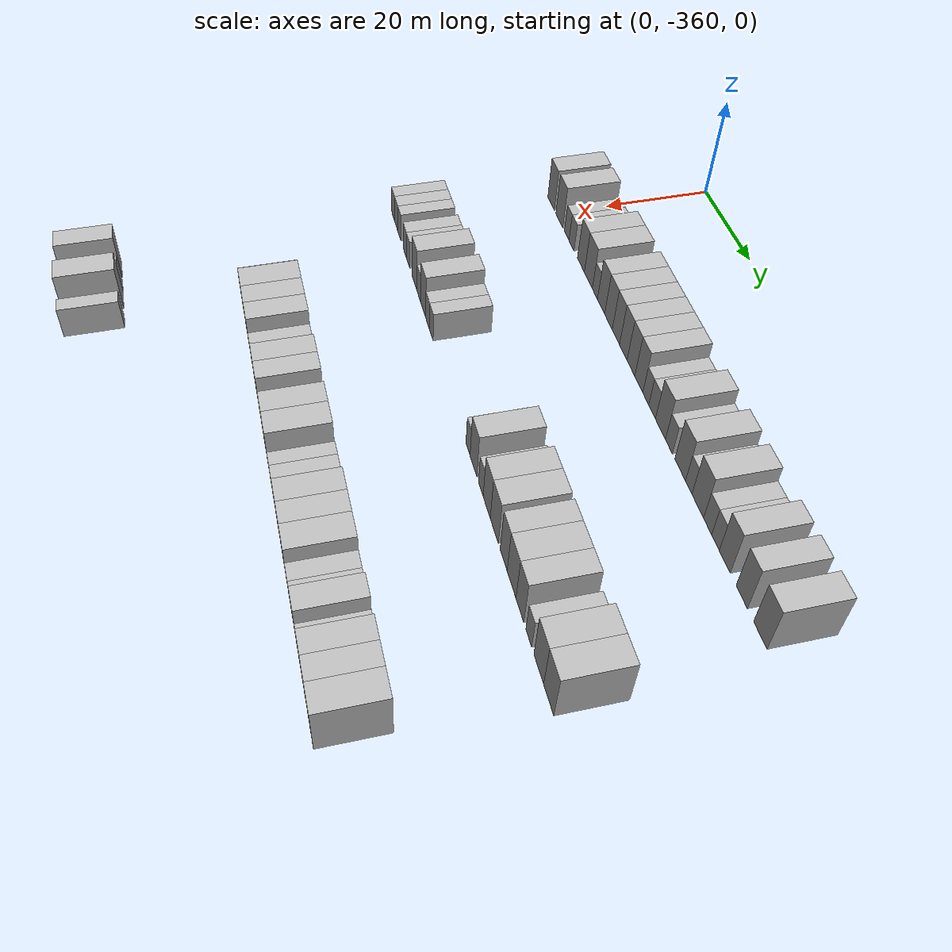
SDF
<sdf version="1.6">
 <world name="default">
  <model name="building_27">
   <static>1</static>
   <pose>25.0000 -363.0500 0 0.000000 0.000000 0.000000</pose>
   <link name="link">
    <pose>0 0 4.50 0 0 0</pose>
    <collision name="collision"><geometry><box><size>10.0000 4.1300 9.0000</size></box></geometry></collision>
    <visual name="visual">
     <cast_shadows>0</cast_shadows>
     <geometry><box><size>10.0000 4.1300 9.0000</size></box></geometry>
     <material>
      <script>
       <uri>model://HANNAS_wall/materials/scripts</uri>
       <uri>model://HANNAS_wall/materials/textures</uri>
       <name>vrc/HANNAS_wall</name>
      </script>
     </material>
    </visual>
   </link>
  </model>
  <model name="building_28">
   <static>1</static>
   <pose>25.0000 -357.8621 0 0.000000 0.000000 0.000000</pose>
   <link name="link">
    <pose>0 0 4.50 0 0 0</pose>
    <collision name="collision"><geometry><box><size>10.0000 4.2459 9.0000</size></box></geometry></collision>
    <visual name="visual">
     <cast_shadows>0</cast_shadows>
     <geometry><box><size>10.0000 4.2459 9.0000</size></box></geometry>
     <material>
      <script>
       <uri>model://HANNAS_wall/materials/scripts</uri>
       <uri>model://HANNAS_wall/materials/textures</uri>
       <name>vrc/HANNAS_wall</name>
      </script>
     </material>
    </visual>
   </link>
  </model>
  <model name="building_29">
   <static>1</static>
   <pose>25.0000 -353.3727 0 0.000000 0.000000 0.000000</pose>
   <link name="link">
    <pose>0 0 3.00 0 0 0</pose>
    <collision name="collision"><geometry><box><size>10.0000 2.7329 6.0000</size></box></geometry></collision>
    <visual name="visual">
     <cast_shadows>0</cast_shadows>
     <geometry><box><size>10.0000 2.7329 6.0000</size></box></geometry>
     <material>
      <script>
       <uri>model://HANNAS_wall/materials/scripts</uri>
       <uri>model://HANNAS_wall/materials/textures</uri>
       <name>vrc/HANNAS_wall</name>
      </script>
     </material>
    </visual>
   </link>
  </model>
  <model name="building_30">
   <static>1</static>
   <pose>25.0000 -350.5261 0 0.000000 0.000000 0.000000</pose>
   <link name="link">
    <pose>0 0 3.00 0 0 0</pose>
    <collision name="collision"><geometry><box><size>10.0000 2.9603 6.0000</size></box></geometry></collision>
    <visual name="visual">
     <cast_shadows>0</cast_shadows>
     <geometry><box><size>10.0000 2.9603 6.0000</size></box></geometry>
     <material>
      <script>
       <uri>model://HANNAS_wall/materials/scripts</uri>
       <uri>model://HANNAS_wall/materials/textures</uri>
       <name>vrc/HANNAS_wall</name>
      </script>
     </material>
    </visual>
   </link>
  </model>
  <model name="building_31">
   <static>1</static>
   <pose>25.0000 -345.0916 0 0.000000 0.000000 0.000000</pose>
   <link name="link">
    <pose>0 0 4.50 0 0 0</pose>
    <collision name="collision"><geometry><box><size>10.0000 3.9087 9.0000</size></box></geometry></collision>
    <visual name="visual">
     <cast_shadows>0</cast_shadows>
     <geometry><box><size>10.0000 3.9087 9.0000</size></box></geometry>
     <material>
      <script>
       <uri>model://HANNAS_wall/materials/scripts</uri>
       <uri>model://HANNAS_wall/materials/textures</uri>
       <name>vrc/HANNAS_wall</name>
      </script>
     </material>
    </visual>
   </link>
  </model>
  <model name="building_32">
   <static>1</static>
   <pose>25.0000 -340.9366 0 0.000000 0.000000 0.000000</pose>
   <link name="link">
    <pose>0 0 4.50 0 0 0</pose>
    <collision name="collision"><geometry><box><size>10.0000 4.4014 9.0000</size></box></geometry></collision>
    <visual name="visual">
     <cast_shadows>0</cast_shadows>
     <geometry><box><size>10.0000 4.4014 9.0000</size></box></geometry>
     <material>
      <script>
       <uri>model://HANNAS_wall/materials/scripts</uri>
       <uri>model://HANNAS_wall/materials/textures</uri>
       <name>vrc/HANNAS_wall</name>
      </script>
     </material>
    </visual>
   </link>
  </model>
  <model name="building_33">
   <static>1</static>
   <pose>25.0000 -337.3768 0 0.000000 0.000000 0.000000</pose>
   <link name="link">
    <pose>0 0 3.00 0 0 0</pose>
    <collision name="collision"><geometry><box><size>10.0000 2.7182 6.0000</size></box></geometry></collision>
    <visual name="visual">
     <cast_shadows>0</cast_shadows>
     <geometry><box><size>10.0000 2.7182 6.0000</size></box></geometry>
     <material>
      <script>
       <uri>model://HANNAS_wall/materials/scripts</uri>
       <uri>model://HANNAS_wall/materials/textures</uri>
       <name>vrc/HANNAS_wall</name>
      </script>
     </material>
    </visual>
   </link>
  </model>
  <model name="building_34">
   <static>1</static>
   <pose>25.0000 -334.1154 0 0.000000 0.000000 0.000000</pose>
   <link name="link">
    <pose>0 0 4.50 0 0 0</pose>
    <collision name="collision"><geometry><box><size>10.0000 3.8047 9.0000</size></box></geometry></collision>
    <visual name="visual">
     <cast_shadows>0</cast_shadows>
     <geometry><box><size>10.0000 3.8047 9.0000</size></box></geometry>
     <material>
      <script>
       <uri>model://HANNAS_wall/materials/scripts</uri>
       <uri>model://HANNAS_wall/materials/textures</uri>
       <name>vrc/HANNAS_wall</name>
      </script>
     </material>
    </visual>
   </link>
  </model>
  <model name="building_35">
   <static>1</static>
   <pose>25.0000 -330.2671 0 0.000000 0.000000 0.000000</pose>
   <link name="link">
    <pose>0 0 4.50 0 0 0</pose>
    <collision name="collision"><geometry><box><size>10.0000 3.8918 9.0000</size></box></geometry></collision>
    <visual name="visual">
     <cast_shadows>0</cast_shadows>
     <geometry><box><size>10.0000 3.8918 9.0000</size></box></geometry>
     <material>
      <script>
       <uri>model://HANNAS_wall/materials/scripts</uri>
       <uri>model://HANNAS_wall/materials/textures</uri>
       <name>vrc/HANNAS_wall</name>
      </script>
     </material>
    </visual>
   </link>
  </model>
  <model name="building_36">
   <static>1</static>
   <pose>25.0000 -326.5169 0 0.000000 0.000000 0.000000</pose>
   <link name="link">
    <pose>0 0 4.50 0 0 0</pose>
    <collision name="collision"><geometry><box><size>10.0000 3.6088 9.0000</size></box></geometry></collision>
    <visual name="visual">
     <cast_shadows>0</cast_shadows>
     <geometry><box><size>10.0000 3.6088 9.0000</size></box></geometry>
     <material>
      <script>
       <uri>model://HANNAS_wall/materials/scripts</uri>
       <uri>model://HANNAS_wall/materials/textures</uri>
       <name>vrc/HANNAS_wall</name>
      </script>
     </material>
    </visual>
   </link>
  </model>
  <model name="building_37">
   <static>1</static>
   <pose>25.0000 -322.8795 0 0.000000 0.000000 0.000000</pose>
   <link name="link">
    <pose>0 0 4.50 0 0 0</pose>
    <collision name="collision"><geometry><box><size>10.0000 3.6660 9.0000</size></box></geometry></collision>
    <visual name="visual">
     <cast_shadows>0</cast_shadows>
     <geometry><box><size>10.0000 3.6660 9.0000</size></box></geometry>
     <material>
      <script>
       <uri>model://HANNAS_wall/materials/scripts</uri>
       <uri>model://HANNAS_wall/materials/textures</uri>
       <name>vrc/HANNAS_wall</name>
      </script>
     </material>
    </visual>
   </link>
  </model>
  <model name="building_38">
   <static>1</static>
   <pose>25.0000 -319.2325 0 0.000000 0.000000 0.000000</pose>
   <link name="link">
    <pose>0 0 4.50 0 0 0</pose>
    <collision name="collision"><geometry><box><size>10.0000 3.6280 9.0000</size></box></geometry></collision>
    <visual name="visual">
     <cast_shadows>0</cast_shadows>
     <geometry><box><size>10.0000 3.6280 9.0000</size></box></geometry>
     <material>
      <script>
       <uri>model://HANNAS_wall/materials/scripts</uri>
       <uri>model://HANNAS_wall/materials/textures</uri>
       <name>vrc/HANNAS_wall</name>
      </script>
     </material>
    </visual>
   </link>
  </model>
  <model name="building_39">
   <static>1</static>
   <pose>25.0000 -315.5780 0 0.000000 0.000000 0.000000</pose>
   <link name="link">
    <pose>0 0 4.50 0 0 0</pose>
    <collision name="collision"><geometry><box><size>10.0000 3.6810 9.0000</size></box></geometry></collision>
    <visual name="visual">
     <cast_shadows>0</cast_shadows>
     <geometry><box><size>10.0000 3.6810 9.0000</size></box></geometry>
     <material>
      <script>
       <uri>model://HANNAS_wall/materials/scripts</uri>
       <uri>model://HANNAS_wall/materials/textures</uri>
       <name>vrc/HANNAS_wall</name>
      </script>
     </material>
    </visual>
   </link>
  </model>
  <model name="building_40">
   <static>1</static>
   <pose>25.0000 -312.4079 0 0.000000 0.000000 0.000000</pose>
   <link name="link">
    <pose>0 0 3.00 0 0 0</pose>
    <collision name="collision"><geometry><box><size>10.0000 2.6592 6.0000</size></box></geometry></collision>
    <visual name="visual">
     <cast_shadows>0</cast_shadows>
     <geometry><box><size>10.0000 2.6592 6.0000</size></box></geometry>
     <material>
      <script>
       <uri>model://HANNAS_wall/materials/scripts</uri>
       <uri>model://HANNAS_wall/materials/textures</uri>
       <name>vrc/HANNAS_wall</name>
      </script>
     </material>
    </visual>
   </link>
  </model>
  <model name="building_41">
   <static>1</static>
   <pose>25.0000 -309.6096 0 0.000000 0.000000 0.000000</pose>
   <link name="link">
    <pose>0 0 3.00 0 0 0</pose>
    <collision name="collision"><geometry><box><size>10.0000 2.9374 6.0000</size></box></geometry></collision>
    <visual name="visual">
     <cast_shadows>0</cast_shadows>
     <geometry><box><size>10.0000 2.9374 6.0000</size></box></geometry>
     <material>
      <script>
       <uri>model://HANNAS_wall/materials/scripts</uri>
       <uri>model://HANNAS_wall/materials/textures</uri>
       <name>vrc/HANNAS_wall</name>
      </script>
     </material>
    </visual>
   </link>
  </model>
  <model name="building_42">
   <static>1</static>
   <pose>25.0000 -306.0149 0 0.000000 0.000000 0.000000</pose>
   <link name="link">
    <pose>0 0 4.50 0 0 0</pose>
    <collision name="collision"><geometry><box><size>10.0000 4.2520 9.0000</size></box></geometry></collision>
    <visual name="visual">
     <cast_shadows>0</cast_shadows>
     <geometry><box><size>10.0000 4.2520 9.0000</size></box></geometry>
     <material>
      <script>
       <uri>model://HANNAS_wall/materials/scripts</uri>
       <uri>model://HANNAS_wall/materials/textures</uri>
       <name>vrc/HANNAS_wall</name>
      </script>
     </material>
    </visual>
   </link>
  </model>
  <model name="building_43">
   <static>1</static>
   <pose>25.0000 -302.4522 0 0.000000 0.000000 0.000000</pose>
   <link name="link">
    <pose>0 0 3.00 0 0 0</pose>
    <collision name="collision"><geometry><box><size>10.0000 2.8735 6.0000</size></box></geometry></collision>
    <visual name="visual">
     <cast_shadows>0</cast_shadows>
     <geometry><box><size>10.0000 2.8735 6.0000</size></box></geometry>
     <material>
      <script>
       <uri>model://HANNAS_wall/materials/scripts</uri>
       <uri>model://HANNAS_wall/materials/textures</uri>
       <name>vrc/HANNAS_wall</name>
      </script>
     </material>
    </visual>
   </link>
  </model>
  <model name="building_44">
   <static>1</static>
   <pose>25.0000 -297.8912 0 0.000000 0.000000 0.000000</pose>
   <link name="link">
    <pose>0 0 4.50 0 0 0</pose>
    <collision name="collision"><geometry><box><size>10.0000 4.2485 9.0000</size></box></geometry></collision>
    <visual name="visual">
     <cast_shadows>0</cast_shadows>
     <geometry><box><size>10.0000 4.2485 9.0000</size></box></geometry>
     <material>
      <script>
       <uri>model://HANNAS_wall/materials/scripts</uri>
       <uri>model://HANNAS_wall/materials/textures</uri>
       <name>vrc/HANNAS_wall</name>
      </script>
     </material>
    </visual>
   </link>
  </model>
  <model name="building_45">
   <static>1</static>
   <pose>25.0000 -294.5247 0 0.000000 0.000000 0.000000</pose>
   <link name="link">
    <pose>0 0 3.00 0 0 0</pose>
    <collision name="collision"><geometry><box><size>10.0000 2.4846 6.0000</size></box></geometry></collision>
    <visual name="visual">
     <cast_shadows>0</cast_shadows>
     <geometry><box><size>10.0000 2.4846 6.0000</size></box></geometry>
     <material>
      <script>
       <uri>model://HANNAS_wall/materials/scripts</uri>
       <uri>model://HANNAS_wall/materials/textures</uri>
       <name>vrc/HANNAS_wall</name>
      </script>
     </material>
    </visual>
   </link>
  </model>
  <model name="building_46">
   <static>1</static>
   <pose>25.0000 -291.0956 0 0.000000 0.000000 0.000000</pose>
   <link name="link">
    <pose>0 0 4.50 0 0 0</pose>
    <collision name="collision"><geometry><box><size>10.0000 4.3736 9.0000</size></box></geometry></collision>
    <visual name="visual">
     <cast_shadows>0</cast_shadows>
     <geometry><box><size>10.0000 4.3736 9.0000</size></box></geometry>
     <material>
      <script>
       <uri>model://HANNAS_wall/materials/scripts</uri>
       <uri>model://HANNAS_wall/materials/textures</uri>
       <name>vrc/HANNAS_wall</name>
      </script>
     </material>
    </visual>
   </link>
  </model>
  <model name="building_47">
   <static>1</static>
   <pose>25.0000 -287.4428 0 0.000000 0.000000 0.000000</pose>
   <link name="link">
    <pose>0 0 3.00 0 0 0</pose>
    <collision name="collision"><geometry><box><size>10.0000 2.9320 6.0000</size></box></geometry></collision>
    <visual name="visual">
     <cast_shadows>0</cast_shadows>
     <geometry><box><size>10.0000 2.9320 6.0000</size></box></geometry>
     <material>
      <script>
       <uri>model://HANNAS_wall/materials/scripts</uri>
       <uri>model://HANNAS_wall/materials/textures</uri>
       <name>vrc/HANNAS_wall</name>
      </script>
     </material>
    </visual>
   </link>
  </model>
  <model name="building_48">
   <static>1</static>
   <pose>25.0000 -284.6123 0 0.000000 0.000000 0.000000</pose>
   <link name="link">
    <pose>0 0 3.00 0 0 0</pose>
    <collision name="collision"><geometry><box><size>10.0000 2.7289 6.0000</size></box></geometry></collision>
    <visual name="visual">
     <cast_shadows>0</cast_shadows>
     <geometry><box><size>10.0000 2.7289 6.0000</size></box></geometry>
     <material>
      <script>
       <uri>model://HANNAS_wall/materials/scripts</uri>
       <uri>model://HANNAS_wall/materials/textures</uri>
       <name>vrc/HANNAS_wall</name>
      </script>
     </material>
    </visual>
   </link>
  </model>
  <model name="building_49">
   <static>1</static>
   <pose>25.0000 -281.3459 0 0.000000 0.000000 0.000000</pose>
   <link name="link">
    <pose>0 0 4.50 0 0 0</pose>
    <collision name="collision"><geometry><box><size>10.0000 3.8039 9.0000</size></box></geometry></collision>
    <visual name="visual">
     <cast_shadows>0</cast_shadows>
     <geometry><box><size>10.0000 3.8039 9.0000</size></box></geometry>
     <material>
      <script>
       <uri>model://HANNAS_wall/materials/scripts</uri>
       <uri>model://HANNAS_wall/materials/textures</uri>
       <name>vrc/HANNAS_wall</name>
      </script>
     </material>
    </visual>
   </link>
  </model>
  <model name="building_50">
   <static>1</static>
   <pose>25.0000 -275.5968 0 0.000000 0.000000 0.000000</pose>
   <link name="link">
    <pose>0 0 4.50 0 0 0</pose>
    <collision name="collision"><geometry><box><size>10.0000 3.6944 9.0000</size></box></geometry></collision>
    <visual name="visual">
     <cast_shadows>0</cast_shadows>
     <geometry><box><size>10.0000 3.6944 9.0000</size></box></geometry>
     <material>
      <script>
       <uri>model://HANNAS_wall/materials/scripts</uri>
       <uri>model://HANNAS_wall/materials/textures</uri>
       <name>vrc/HANNAS_wall</name>
      </script>
     </material>
    </visual>
   </link>
  </model>
  <model name="building_51">
   <static>1</static>
   <pose>25.0000 -269.6578 0 0.000000 0.000000 0.000000</pose>
   <link name="link">
    <pose>0 0 4.50 0 0 0</pose>
    <collision name="collision"><geometry><box><size>10.0000 4.1835 9.0000</size></box></geometry></collision>
    <visual name="visual">
     <cast_shadows>0</cast_shadows>
     <geometry><box><size>10.0000 4.1835 9.0000</size></box></geometry>
     <material>
      <script>
       <uri>model://HANNAS_wall/materials/scripts</uri>
       <uri>model://HANNAS_wall/materials/textures</uri>
       <name>vrc/HANNAS_wall</name>
      </script>
     </material>
    </visual>
   </link>
  </model>
  <model name="building_253">
   <static>1</static>
   <pose>55.0000 -365.2650 0 0.000000 0.000000 0.000000</pose>
   <link name="link">
    <pose>0 0 3.00 0 0 0</pose>
    <collision name="collision"><geometry><box><size>10.0000 2.8047 6.0000</size></box></geometry></collision>
    <visual name="visual">
     <cast_shadows>0</cast_shadows>
     <geometry><box><size>10.0000 2.8047 6.0000</size></box></geometry>
     <material>
      <script>
       <uri>model://HANNAS_wall/materials/scripts</uri>
       <uri>model://HANNAS_wall/materials/textures</uri>
       <name>vrc/HANNAS_wall</name>
      </script>
     </material>
    </visual>
   </link>
  </model>
  <model name="building_254">
   <static>1</static>
   <pose>55.0000 -362.4300 0 0.000000 0.000000 0.000000</pose>
   <link name="link">
    <pose>0 0 3.00 0 0 0</pose>
    <collision name="collision"><geometry><box><size>10.0000 2.8653 6.0000</size></box></geometry></collision>
    <visual name="visual">
     <cast_shadows>0</cast_shadows>
     <geometry><box><size>10.0000 2.8653 6.0000</size></box></geometry>
     <material>
      <script>
       <uri>model://HANNAS_wall/materials/scripts</uri>
       <uri>model://HANNAS_wall/materials/textures</uri>
       <name>vrc/HANNAS_wall</name>
      </script>
     </material>
    </visual>
   </link>
  </model>
  <model name="building_255">
   <static>1</static>
   <pose>55.0000 -359.6555 0 0.000000 0.000000 0.000000</pose>
   <link name="link">
    <pose>0 0 3.00 0 0 0</pose>
    <collision name="collision"><geometry><box><size>10.0000 2.6836 6.0000</size></box></geometry></collision>
    <visual name="visual">
     <cast_shadows>0</cast_shadows>
     <geometry><box><size>10.0000 2.6836 6.0000</size></box></geometry>
     <material>
      <script>
       <uri>model://HANNAS_wall/materials/scripts</uri>
       <uri>model://HANNAS_wall/materials/textures</uri>
       <name>vrc/HANNAS_wall</name>
      </script>
     </material>
    </visual>
   </link>
  </model>
  <model name="building_256">
   <static>1</static>
   <pose>55.0000 -354.8595 0 0.000000 0.000000 0.000000</pose>
   <link name="link">
    <pose>0 0 3.00 0 0 0</pose>
    <collision name="collision"><geometry><box><size>10.0000 2.9083 6.0000</size></box></geometry></collision>
    <visual name="visual">
     <cast_shadows>0</cast_shadows>
     <geometry><box><size>10.0000 2.9083 6.0000</size></box></geometry>
     <material>
      <script>
       <uri>model://HANNAS_wall/materials/scripts</uri>
       <uri>model://HANNAS_wall/materials/textures</uri>
       <name>vrc/HANNAS_wall</name>
      </script>
     </material>
    </visual>
   </link>
  </model>
  <model name="building_257">
   <static>1</static>
   <pose>55.0000 -352.0456 0 0.000000 0.000000 0.000000</pose>
   <link name="link">
    <pose>0 0 3.00 0 0 0</pose>
    <collision name="collision"><geometry><box><size>10.0000 2.7196 6.0000</size></box></geometry></collision>
    <visual name="visual">
     <cast_shadows>0</cast_shadows>
     <geometry><box><size>10.0000 2.7196 6.0000</size></box></geometry>
     <material>
      <script>
       <uri>model://HANNAS_wall/materials/scripts</uri>
       <uri>model://HANNAS_wall/materials/textures</uri>
       <name>vrc/HANNAS_wall</name>
      </script>
     </material>
    </visual>
   </link>
  </model>
  <model name="building_258">
   <static>1</static>
   <pose>55.0000 -346.6609 0 0.000000 0.000000 0.000000</pose>
   <link name="link">
    <pose>0 0 4.50 0 0 0</pose>
    <collision name="collision"><geometry><box><size>10.0000 4.0497 9.0000</size></box></geometry></collision>
    <visual name="visual">
     <cast_shadows>0</cast_shadows>
     <geometry><box><size>10.0000 4.0497 9.0000</size></box></geometry>
     <material>
      <script>
       <uri>model://HANNAS_wall/materials/scripts</uri>
       <uri>model://HANNAS_wall/materials/textures</uri>
       <name>vrc/HANNAS_wall</name>
      </script>
     </material>
    </visual>
   </link>
  </model>
  <model name="building_259">
   <static>1</static>
   <pose>55.0000 -343.1978 0 0.000000 0.000000 0.000000</pose>
   <link name="link">
    <pose>0 0 3.00 0 0 0</pose>
    <collision name="collision"><geometry><box><size>10.0000 2.8764 6.0000</size></box></geometry></collision>
    <visual name="visual">
     <cast_shadows>0</cast_shadows>
     <geometry><box><size>10.0000 2.8764 6.0000</size></box></geometry>
     <material>
      <script>
       <uri>model://HANNAS_wall/materials/scripts</uri>
       <uri>model://HANNAS_wall/materials/textures</uri>
       <name>vrc/HANNAS_wall</name>
      </script>
     </material>
    </visual>
   </link>
  </model>
  <model name="building_260">
   <static>1</static>
   <pose>55.0000 -339.7585 0 0.000000 0.000000 0.000000</pose>
   <link name="link">
    <pose>0 0 4.50 0 0 0</pose>
    <collision name="collision"><geometry><box><size>10.0000 4.0024 9.0000</size></box></geometry></collision>
    <visual name="visual">
     <cast_shadows>0</cast_shadows>
     <geometry><box><size>10.0000 4.0024 9.0000</size></box></geometry>
     <material>
      <script>
       <uri>model://HANNAS_wall/materials/scripts</uri>
       <uri>model://HANNAS_wall/materials/textures</uri>
       <name>vrc/HANNAS_wall</name>
      </script>
     </material>
    </visual>
   </link>
  </model>
  <model name="building_261">
   <static>1</static>
   <pose>55.0000 -336.3367 0 0.000000 0.000000 0.000000</pose>
   <link name="link">
    <pose>0 0 3.00 0 0 0</pose>
    <collision name="collision"><geometry><box><size>10.0000 2.8411 6.0000</size></box></geometry></collision>
    <visual name="visual">
     <cast_shadows>0</cast_shadows>
     <geometry><box><size>10.0000 2.8411 6.0000</size></box></geometry>
     <material>
      <script>
       <uri>model://HANNAS_wall/materials/scripts</uri>
       <uri>model://HANNAS_wall/materials/textures</uri>
       <name>vrc/HANNAS_wall</name>
      </script>
     </material>
    </visual>
   </link>
  </model>
  <model name="building_262">
   <static>1</static>
   <pose>55.0000 -333.5137 0 0.000000 0.000000 0.000000</pose>
   <link name="link">
    <pose>0 0 3.00 0 0 0</pose>
    <collision name="collision"><geometry><box><size>10.0000 2.8049 6.0000</size></box></geometry></collision>
    <visual name="visual">
     <cast_shadows>0</cast_shadows>
     <geometry><box><size>10.0000 2.8049 6.0000</size></box></geometry>
     <material>
      <script>
       <uri>model://HANNAS_wall/materials/scripts</uri>
       <uri>model://HANNAS_wall/materials/textures</uri>
       <name>vrc/HANNAS_wall</name>
      </script>
     </material>
    </visual>
   </link>
  </model>
  <model name="building_263">
   <static>1</static>
   <pose>55.0000 -308.3529 0 0.000000 0.000000 0.000000</pose>
   <link name="link">
    <pose>0 0 3.00 0 0 0</pose>
    <collision name="collision"><geometry><box><size>10.0000 2.5056 6.0000</size></box></geometry></collision>
    <visual name="visual">
     <cast_shadows>0</cast_shadows>
     <geometry><box><size>10.0000 2.5056 6.0000</size></box></geometry>
     <material>
      <script>
       <uri>model://HANNAS_wall/materials/scripts</uri>
       <uri>model://HANNAS_wall/materials/textures</uri>
       <name>vrc/HANNAS_wall</name>
      </script>
     </material>
    </visual>
   </link>
  </model>
  <model name="building_264">
   <static>1</static>
   <pose>55.0000 -305.0555 0 0.000000 0.000000 0.000000</pose>
   <link name="link">
    <pose>0 0 4.50 0 0 0</pose>
    <collision name="collision"><geometry><box><size>10.0000 4.0892 9.0000</size></box></geometry></collision>
    <visual name="visual">
     <cast_shadows>0</cast_shadows>
     <geometry><box><size>10.0000 4.0892 9.0000</size></box></geometry>
     <material>
      <script>
       <uri>model://HANNAS_wall/materials/scripts</uri>
       <uri>model://HANNAS_wall/materials/textures</uri>
       <name>vrc/HANNAS_wall</name>
      </script>
     </material>
    </visual>
   </link>
  </model>
  <model name="building_265">
   <static>1</static>
   <pose>55.0000 -300.6728 0 0.000000 0.000000 0.000000</pose>
   <link name="link">
    <pose>0 0 3.00 0 0 0</pose>
    <collision name="collision"><geometry><box><size>10.0000 2.6763 6.0000</size></box></geometry></collision>
    <visual name="visual">
     <cast_shadows>0</cast_shadows>
     <geometry><box><size>10.0000 2.6763 6.0000</size></box></geometry>
     <material>
      <script>
       <uri>model://HANNAS_wall/materials/scripts</uri>
       <uri>model://HANNAS_wall/materials/textures</uri>
       <name>vrc/HANNAS_wall</name>
      </script>
     </material>
    </visual>
   </link>
  </model>
  <model name="building_266">
   <static>1</static>
   <pose>55.0000 -297.3079 0 0.000000 0.000000 0.000000</pose>
   <link name="link">
    <pose>0 0 4.50 0 0 0</pose>
    <collision name="collision"><geometry><box><size>10.0000 4.0535 9.0000</size></box></geometry></collision>
    <visual name="visual">
     <cast_shadows>0</cast_shadows>
     <geometry><box><size>10.0000 4.0535 9.0000</size></box></geometry>
     <material>
      <script>
       <uri>model://HANNAS_wall/materials/scripts</uri>
       <uri>model://HANNAS_wall/materials/textures</uri>
       <name>vrc/HANNAS_wall</name>
      </script>
     </material>
    </visual>
   </link>
  </model>
  <model name="building_267">
   <static>1</static>
   <pose>55.0000 -293.0946 0 0.000000 0.000000 0.000000</pose>
   <link name="link">
    <pose>0 0 4.50 0 0 0</pose>
    <collision name="collision"><geometry><box><size>10.0000 4.3731 9.0000</size></box></geometry></collision>
    <visual name="visual">
     <cast_shadows>0</cast_shadows>
     <geometry><box><size>10.0000 4.3731 9.0000</size></box></geometry>
     <material>
      <script>
       <uri>model://HANNAS_wall/materials/scripts</uri>
       <uri>model://HANNAS_wall/materials/textures</uri>
       <name>vrc/HANNAS_wall</name>
      </script>
     </material>
    </visual>
   </link>
  </model>
  <model name="building_268">
   <static>1</static>
   <pose>55.0000 -288.0886 0 0.000000 0.000000 0.000000</pose>
   <link name="link">
    <pose>0 0 4.50 0 0 0</pose>
    <collision name="collision"><geometry><box><size>10.0000 3.6389 9.0000</size></box></geometry></collision>
    <visual name="visual">
     <cast_shadows>0</cast_shadows>
     <geometry><box><size>10.0000 3.6389 9.0000</size></box></geometry>
     <material>
      <script>
       <uri>model://HANNAS_wall/materials/scripts</uri>
       <uri>model://HANNAS_wall/materials/textures</uri>
       <name>vrc/HANNAS_wall</name>
      </script>
     </material>
    </visual>
   </link>
  </model>
  <model name="building_269">
   <static>1</static>
   <pose>55.0000 -284.0459 0 0.000000 0.000000 0.000000</pose>
   <link name="link">
    <pose>0 0 4.50 0 0 0</pose>
    <collision name="collision"><geometry><box><size>10.0000 4.4466 9.0000</size></box></geometry></collision>
    <visual name="visual">
     <cast_shadows>0</cast_shadows>
     <geometry><box><size>10.0000 4.4466 9.0000</size></box></geometry>
     <material>
      <script>
       <uri>model://HANNAS_wall/materials/scripts</uri>
       <uri>model://HANNAS_wall/materials/textures</uri>
       <name>vrc/HANNAS_wall</name>
      </script>
     </material>
    </visual>
   </link>
  </model>
  <model name="building_270">
   <static>1</static>
   <pose>55.0000 -279.9285 0 0.000000 0.000000 0.000000</pose>
   <link name="link">
    <pose>0 0 4.50 0 0 0</pose>
    <collision name="collision"><geometry><box><size>10.0000 3.7881 9.0000</size></box></geometry></collision>
    <visual name="visual">
     <cast_shadows>0</cast_shadows>
     <geometry><box><size>10.0000 3.7881 9.0000</size></box></geometry>
     <material>
      <script>
       <uri>model://HANNAS_wall/materials/scripts</uri>
       <uri>model://HANNAS_wall/materials/textures</uri>
       <name>vrc/HANNAS_wall</name>
      </script>
     </material>
    </visual>
   </link>
  </model>
  <model name="building_271">
   <static>1</static>
   <pose>55.0000 -275.6757 0 0.000000 0.000000 0.000000</pose>
   <link name="link">
    <pose>0 0 3.00 0 0 0</pose>
    <collision name="collision"><geometry><box><size>10.0000 2.7176 6.0000</size></box></geometry></collision>
    <visual name="visual">
     <cast_shadows>0</cast_shadows>
     <geometry><box><size>10.0000 2.7176 6.0000</size></box></geometry>
     <material>
      <script>
       <uri>model://HANNAS_wall/materials/scripts</uri>
       <uri>model://HANNAS_wall/materials/textures</uri>
       <name>vrc/HANNAS_wall</name>
      </script>
     </material>
    </visual>
   </link>
  </model>
  <model name="building_272">
   <static>1</static>
   <pose>55.0000 -271.1413 0 0.000000 0.000000 0.000000</pose>
   <link name="link">
    <pose>0 0 4.50 0 0 0</pose>
    <collision name="collision"><geometry><box><size>10.0000 4.3512 9.0000</size></box></geometry></collision>
    <visual name="visual">
     <cast_shadows>0</cast_shadows>
     <geometry><box><size>10.0000 4.3512 9.0000</size></box></geometry>
     <material>
      <script>
       <uri>model://HANNAS_wall/materials/scripts</uri>
       <uri>model://HANNAS_wall/materials/textures</uri>
       <name>vrc/HANNAS_wall</name>
      </script>
     </material>
    </visual>
   </link>
  </model>
  <model name="building_273">
   <static>1</static>
   <pose>55.0000 -266.7812 0 0.000000 0.000000 0.000000</pose>
   <link name="link">
    <pose>0 0 4.50 0 0 0</pose>
    <collision name="collision"><geometry><box><size>10.0000 4.3690 9.0000</size></box></geometry></collision>
    <visual name="visual">
     <cast_shadows>0</cast_shadows>
     <geometry><box><size>10.0000 4.3690 9.0000</size></box></geometry>
     <material>
      <script>
       <uri>model://HANNAS_wall/materials/scripts</uri>
       <uri>model://HANNAS_wall/materials/textures</uri>
       <name>vrc/HANNAS_wall</name>
      </script>
     </material>
    </visual>
   </link>
  </model>
  <model name="building_483">
   <static>1</static>
   <pose>85.0000 -348.9693 0 0.000000 0.000000 0.000000</pose>
   <link name="link">
    <pose>0 0 3.00 0 0 0</pose>
    <collision name="collision"><geometry><box><size>10.0000 2.5355 6.0000</size></box></geometry></collision>
    <visual name="visual">
     <cast_shadows>0</cast_shadows>
     <geometry><box><size>10.0000 2.5355 6.0000</size></box></geometry>
     <material>
      <script>
       <uri>model://HANNAS_wall/materials/scripts</uri>
       <uri>model://HANNAS_wall/materials/textures</uri>
       <name>vrc/HANNAS_wall</name>
      </script>
     </material>
    </visual>
   </link>
  </model>
  <model name="building_484">
   <static>1</static>
   <pose>85.0000 -344.4860 0 0.000000 0.000000 0.000000</pose>
   <link name="link">
    <pose>0 0 4.50 0 0 0</pose>
    <collision name="collision"><geometry><box><size>10.0000 4.4310 9.0000</size></box></geometry></collision>
    <visual name="visual">
     <cast_shadows>0</cast_shadows>
     <geometry><box><size>10.0000 4.4310 9.0000</size></box></geometry>
     <material>
      <script>
       <uri>model://HANNAS_wall/materials/scripts</uri>
       <uri>model://HANNAS_wall/materials/textures</uri>
       <name>vrc/HANNAS_wall</name>
      </script>
     </material>
    </visual>
   </link>
  </model>
  <model name="building_485">
   <static>1</static>
   <pose>85.0000 -340.2723 0 0.000000 0.000000 0.000000</pose>
   <link name="link">
    <pose>0 0 4.50 0 0 0</pose>
    <collision name="collision"><geometry><box><size>10.0000 3.9963 9.0000</size></box></geometry></collision>
    <visual name="visual">
     <cast_shadows>0</cast_shadows>
     <geometry><box><size>10.0000 3.9963 9.0000</size></box></geometry>
     <material>
      <script>
       <uri>model://HANNAS_wall/materials/scripts</uri>
       <uri>model://HANNAS_wall/materials/textures</uri>
       <name>vrc/HANNAS_wall</name>
      </script>
     </material>
    </visual>
   </link>
  </model>
  <model name="building_486">
   <static>1</static>
   <pose>85.0000 -336.2787 0 0.000000 0.000000 0.000000</pose>
   <link name="link">
    <pose>0 0 4.50 0 0 0</pose>
    <collision name="collision"><geometry><box><size>10.0000 3.9910 9.0000</size></box></geometry></collision>
    <visual name="visual">
     <cast_shadows>0</cast_shadows>
     <geometry><box><size>10.0000 3.9910 9.0000</size></box></geometry>
     <material>
      <script>
       <uri>model://HANNAS_wall/materials/scripts</uri>
       <uri>model://HANNAS_wall/materials/textures</uri>
       <name>vrc/HANNAS_wall</name>
      </script>
     </material>
    </visual>
   </link>
  </model>
  <model name="building_487">
   <static>1</static>
   <pose>85.0000 -332.8717 0 0.000000 0.000000 0.000000</pose>
   <link name="link">
    <pose>0 0 3.00 0 0 0</pose>
    <collision name="collision"><geometry><box><size>10.0000 2.8230 6.0000</size></box></geometry></collision>
    <visual name="visual">
     <cast_shadows>0</cast_shadows>
     <geometry><box><size>10.0000 2.8230 6.0000</size></box></geometry>
     <material>
      <script>
       <uri>model://HANNAS_wall/materials/scripts</uri>
       <uri>model://HANNAS_wall/materials/textures</uri>
       <name>vrc/HANNAS_wall</name>
      </script>
     </material>
    </visual>
   </link>
  </model>
  <model name="building_488">
   <static>1</static>
   <pose>85.0000 -330.1336 0 0.000000 0.000000 0.000000</pose>
   <link name="link">
    <pose>0 0 3.00 0 0 0</pose>
    <collision name="collision"><geometry><box><size>10.0000 2.6533 6.0000</size></box></geometry></collision>
    <visual name="visual">
     <cast_shadows>0</cast_shadows>
     <geometry><box><size>10.0000 2.6533 6.0000</size></box></geometry>
     <material>
      <script>
       <uri>model://HANNAS_wall/materials/scripts</uri>
       <uri>model://HANNAS_wall/materials/textures</uri>
       <name>vrc/HANNAS_wall</name>
      </script>
     </material>
    </visual>
   </link>
  </model>
  <model name="building_489">
   <static>1</static>
   <pose>85.0000 -326.8795 0 0.000000 0.000000 0.000000</pose>
   <link name="link">
    <pose>0 0 4.50 0 0 0</pose>
    <collision name="collision"><geometry><box><size>10.0000 3.8548 9.0000</size></box></geometry></collision>
    <visual name="visual">
     <cast_shadows>0</cast_shadows>
     <geometry><box><size>10.0000 3.8548 9.0000</size></box></geometry>
     <material>
      <script>
       <uri>model://HANNAS_wall/materials/scripts</uri>
       <uri>model://HANNAS_wall/materials/textures</uri>
       <name>vrc/HANNAS_wall</name>
      </script>
     </material>
    </visual>
   </link>
  </model>
  <model name="building_490">
   <static>1</static>
   <pose>85.0000 -323.1041 0 0.000000 0.000000 0.000000</pose>
   <link name="link">
    <pose>0 0 4.50 0 0 0</pose>
    <collision name="collision"><geometry><box><size>10.0000 3.6959 9.0000</size></box></geometry></collision>
    <visual name="visual">
     <cast_shadows>0</cast_shadows>
     <geometry><box><size>10.0000 3.6959 9.0000</size></box></geometry>
     <material>
      <script>
       <uri>model://HANNAS_wall/materials/scripts</uri>
       <uri>model://HANNAS_wall/materials/textures</uri>
       <name>vrc/HANNAS_wall</name>
      </script>
     </material>
    </visual>
   </link>
  </model>
  <model name="building_491">
   <static>1</static>
   <pose>85.0000 -319.9177 0 0.000000 0.000000 0.000000</pose>
   <link name="link">
    <pose>0 0 3.00 0 0 0</pose>
    <collision name="collision"><geometry><box><size>10.0000 2.6768 6.0000</size></box></geometry></collision>
    <visual name="visual">
     <cast_shadows>0</cast_shadows>
     <geometry><box><size>10.0000 2.6768 6.0000</size></box></geometry>
     <material>
      <script>
       <uri>model://HANNAS_wall/materials/scripts</uri>
       <uri>model://HANNAS_wall/materials/textures</uri>
       <name>vrc/HANNAS_wall</name>
      </script>
     </material>
    </visual>
   </link>
  </model>
  <model name="building_492">
   <static>1</static>
   <pose>85.0000 -316.5764 0 0.000000 0.000000 0.000000</pose>
   <link name="link">
    <pose>0 0 4.50 0 0 0</pose>
    <collision name="collision"><geometry><box><size>10.0000 4.0059 9.0000</size></box></geometry></collision>
    <visual name="visual">
     <cast_shadows>0</cast_shadows>
     <geometry><box><size>10.0000 4.0059 9.0000</size></box></geometry>
     <material>
      <script>
       <uri>model://HANNAS_wall/materials/scripts</uri>
       <uri>model://HANNAS_wall/materials/textures</uri>
       <name>vrc/HANNAS_wall</name>
      </script>
     </material>
    </visual>
   </link>
  </model>
  <model name="building_493">
   <static>1</static>
   <pose>85.0000 -312.4212 0 0.000000 0.000000 0.000000</pose>
   <link name="link">
    <pose>0 0 4.50 0 0 0</pose>
    <collision name="collision"><geometry><box><size>10.0000 4.3045 9.0000</size></box></geometry></collision>
    <visual name="visual">
     <cast_shadows>0</cast_shadows>
     <geometry><box><size>10.0000 4.3045 9.0000</size></box></geometry>
     <material>
      <script>
       <uri>model://HANNAS_wall/materials/scripts</uri>
       <uri>model://HANNAS_wall/materials/textures</uri>
       <name>vrc/HANNAS_wall</name>
      </script>
     </material>
    </visual>
   </link>
  </model>
  <model name="building_494">
   <static>1</static>
   <pose>85.0000 -308.0507 0 0.000000 0.000000 0.000000</pose>
   <link name="link">
    <pose>0 0 3.00 0 0 0</pose>
    <collision name="collision"><geometry><box><size>10.0000 2.4365 6.0000</size></box></geometry></collision>
    <visual name="visual">
     <cast_shadows>0</cast_shadows>
     <geometry><box><size>10.0000 2.4365 6.0000</size></box></geometry>
     <material>
      <script>
       <uri>model://HANNAS_wall/materials/scripts</uri>
       <uri>model://HANNAS_wall/materials/textures</uri>
       <name>vrc/HANNAS_wall</name>
      </script>
     </material>
    </visual>
   </link>
  </model>
  <model name="building_495">
   <static>1</static>
   <pose>85.0000 -305.4317 0 0.000000 0.000000 0.000000</pose>
   <link name="link">
    <pose>0 0 3.00 0 0 0</pose>
    <collision name="collision"><geometry><box><size>10.0000 2.8014 6.0000</size></box></geometry></collision>
    <visual name="visual">
     <cast_shadows>0</cast_shadows>
     <geometry><box><size>10.0000 2.8014 6.0000</size></box></geometry>
     <material>
      <script>
       <uri>model://HANNAS_wall/materials/scripts</uri>
       <uri>model://HANNAS_wall/materials/textures</uri>
       <name>vrc/HANNAS_wall</name>
      </script>
     </material>
    </visual>
   </link>
  </model>
  <model name="building_496">
   <static>1</static>
   <pose>85.0000 -300.0357 0 0.000000 0.000000 0.000000</pose>
   <link name="link">
    <pose>0 0 4.50 0 0 0</pose>
    <collision name="collision"><geometry><box><size>10.0000 3.9907 9.0000</size></box></geometry></collision>
    <visual name="visual">
     <cast_shadows>0</cast_shadows>
     <geometry><box><size>10.0000 3.9907 9.0000</size></box></geometry>
     <material>
      <script>
       <uri>model://HANNAS_wall/materials/scripts</uri>
       <uri>model://HANNAS_wall/materials/textures</uri>
       <name>vrc/HANNAS_wall</name>
      </script>
     </material>
    </visual>
   </link>
  </model>
  <model name="building_497">
   <static>1</static>
   <pose>85.0000 -296.1692 0 0.000000 0.000000 0.000000</pose>
   <link name="link">
    <pose>0 0 4.50 0 0 0</pose>
    <collision name="collision"><geometry><box><size>10.0000 3.7423 9.0000</size></box></geometry></collision>
    <visual name="visual">
     <cast_shadows>0</cast_shadows>
     <geometry><box><size>10.0000 3.7423 9.0000</size></box></geometry>
     <material>
      <script>
       <uri>model://HANNAS_wall/materials/scripts</uri>
       <uri>model://HANNAS_wall/materials/textures</uri>
       <name>vrc/HANNAS_wall</name>
      </script>
     </material>
    </visual>
   </link>
  </model>
  <model name="building_498">
   <static>1</static>
   <pose>85.0000 -292.1522 0 0.000000 0.000000 0.000000</pose>
   <link name="link">
    <pose>0 0 4.50 0 0 0</pose>
    <collision name="collision"><geometry><box><size>10.0000 4.2916 9.0000</size></box></geometry></collision>
    <visual name="visual">
     <cast_shadows>0</cast_shadows>
     <geometry><box><size>10.0000 4.2916 9.0000</size></box></geometry>
     <material>
      <script>
       <uri>model://HANNAS_wall/materials/scripts</uri>
       <uri>model://HANNAS_wall/materials/textures</uri>
       <name>vrc/HANNAS_wall</name>
      </script>
     </material>
    </visual>
   </link>
  </model>
  <model name="building_499">
   <static>1</static>
   <pose>85.0000 -288.5639 0 0.000000 0.000000 0.000000</pose>
   <link name="link">
    <pose>0 0 3.00 0 0 0</pose>
    <collision name="collision"><geometry><box><size>10.0000 2.8852 6.0000</size></box></geometry></collision>
    <visual name="visual">
     <cast_shadows>0</cast_shadows>
     <geometry><box><size>10.0000 2.8852 6.0000</size></box></geometry>
     <material>
      <script>
       <uri>model://HANNAS_wall/materials/scripts</uri>
       <uri>model://HANNAS_wall/materials/textures</uri>
       <name>vrc/HANNAS_wall</name>
      </script>
     </material>
    </visual>
   </link>
  </model>
  <model name="building_500">
   <static>1</static>
   <pose>85.0000 -285.7850 0 0.000000 0.000000 0.000000</pose>
   <link name="link">
    <pose>0 0 3.00 0 0 0</pose>
    <collision name="collision"><geometry><box><size>10.0000 2.6727 6.0000</size></box></geometry></collision>
    <visual name="visual">
     <cast_shadows>0</cast_shadows>
     <geometry><box><size>10.0000 2.6727 6.0000</size></box></geometry>
     <material>
      <script>
       <uri>model://HANNAS_wall/materials/scripts</uri>
       <uri>model://HANNAS_wall/materials/textures</uri>
       <name>vrc/HANNAS_wall</name>
      </script>
     </material>
    </visual>
   </link>
  </model>
  <model name="building_501">
   <static>1</static>
   <pose>85.0000 -282.5707 0 0.000000 0.000000 0.000000</pose>
   <link name="link">
    <pose>0 0 4.50 0 0 0</pose>
    <collision name="collision"><geometry><box><size>10.0000 3.7559 9.0000</size></box></geometry></collision>
    <visual name="visual">
     <cast_shadows>0</cast_shadows>
     <geometry><box><size>10.0000 3.7559 9.0000</size></box></geometry>
     <material>
      <script>
       <uri>model://HANNAS_wall/materials/scripts</uri>
       <uri>model://HANNAS_wall/materials/textures</uri>
       <name>vrc/HANNAS_wall</name>
      </script>
     </material>
    </visual>
   </link>
  </model>
  <model name="building_502">
   <static>1</static>
   <pose>85.0000 -279.4574 0 0.000000 0.000000 0.000000</pose>
   <link name="link">
    <pose>0 0 3.00 0 0 0</pose>
    <collision name="collision"><geometry><box><size>10.0000 2.4705 6.0000</size></box></geometry></collision>
    <visual name="visual">
     <cast_shadows>0</cast_shadows>
     <geometry><box><size>10.0000 2.4705 6.0000</size></box></geometry>
     <material>
      <script>
       <uri>model://HANNAS_wall/materials/scripts</uri>
       <uri>model://HANNAS_wall/materials/textures</uri>
       <name>vrc/HANNAS_wall</name>
      </script>
     </material>
    </visual>
   </link>
  </model>
  <model name="building_503">
   <static>1</static>
   <pose>85.0000 -276.3813 0 0.000000 0.000000 0.000000</pose>
   <link name="link">
    <pose>0 0 4.50 0 0 0</pose>
    <collision name="collision"><geometry><box><size>10.0000 3.6817 9.0000</size></box></geometry></collision>
    <visual name="visual">
     <cast_shadows>0</cast_shadows>
     <geometry><box><size>10.0000 3.6817 9.0000</size></box></geometry>
     <material>
      <script>
       <uri>model://HANNAS_wall/materials/scripts</uri>
       <uri>model://HANNAS_wall/materials/textures</uri>
       <name>vrc/HANNAS_wall</name>
      </script>
     </material>
    </visual>
   </link>
  </model>
  <model name="building_504">
   <static>1</static>
   <pose>85.0000 -272.7372 0 0.000000 0.000000 0.000000</pose>
   <link name="link">
    <pose>0 0 4.50 0 0 0</pose>
    <collision name="collision"><geometry><box><size>10.0000 3.6065 9.0000</size></box></geometry></collision>
    <visual name="visual">
     <cast_shadows>0</cast_shadows>
     <geometry><box><size>10.0000 3.6065 9.0000</size></box></geometry>
     <material>
      <script>
       <uri>model://HANNAS_wall/materials/scripts</uri>
       <uri>model://HANNAS_wall/materials/textures</uri>
       <name>vrc/HANNAS_wall</name>
      </script>
     </material>
    </visual>
   </link>
  </model>
  <model name="building_505">
   <static>1</static>
   <pose>85.0000 -268.7778 0 0.000000 0.000000 0.000000</pose>
   <link name="link">
    <pose>0 0 4.50 0 0 0</pose>
    <collision name="collision"><geometry><box><size>10.0000 4.3124 9.0000</size></box></geometry></collision>
    <visual name="visual">
     <cast_shadows>0</cast_shadows>
     <geometry><box><size>10.0000 4.3124 9.0000</size></box></geometry>
     <material>
      <script>
       <uri>model://HANNAS_wall/materials/scripts</uri>
       <uri>model://HANNAS_wall/materials/textures</uri>
       <name>vrc/HANNAS_wall</name>
      </script>
     </material>
    </visual>
   </link>
  </model>
  <model name="building_721">
   <static>1</static>
   <pose>115.0000 -360.8513 0 0.000000 0.000000 0.000000</pose>
   <link name="link">
    <pose>0 0 4.50 0 0 0</pose>
    <collision name="collision"><geometry><box><size>10.0000 3.9524 9.0000</size></box></geometry></collision>
    <visual name="visual">
     <cast_shadows>0</cast_shadows>
     <geometry><box><size>10.0000 3.9524 9.0000</size></box></geometry>
     <material>
      <script>
       <uri>model://HANNAS_wall/materials/scripts</uri>
       <uri>model://HANNAS_wall/materials/textures</uri>
       <name>vrc/HANNAS_wall</name>
      </script>
     </material>
    </visual>
   </link>
  </model>
  <model name="building_722">
   <static>1</static>
   <pose>115.0000 -356.5158 0 0.000000 0.000000 0.000000</pose>
   <link name="link">
    <pose>0 0 3.00 0 0 0</pose>
    <collision name="collision"><geometry><box><size>10.0000 2.7185 6.0000</size></box></geometry></collision>
    <visual name="visual">
     <cast_shadows>0</cast_shadows>
     <geometry><box><size>10.0000 2.7185 6.0000</size></box></geometry>
     <material>
      <script>
       <uri>model://HANNAS_wall/materials/scripts</uri>
       <uri>model://HANNAS_wall/materials/textures</uri>
       <name>vrc/HANNAS_wall</name>
      </script>
     </material>
    </visual>
   </link>
  </model>
  <model name="building_723">
   <static>1</static>
   <pose>115.0000 -352.9447 0 0.000000 0.000000 0.000000</pose>
   <link name="link">
    <pose>0 0 4.50 0 0 0</pose>
    <collision name="collision"><geometry><box><size>10.0000 4.4238 9.0000</size></box></geometry></collision>
    <visual name="visual">
     <cast_shadows>0</cast_shadows>
     <geometry><box><size>10.0000 4.4238 9.0000</size></box></geometry>
     <material>
      <script>
       <uri>model://HANNAS_wall/materials/scripts</uri>
       <uri>model://HANNAS_wall/materials/textures</uri>
       <name>vrc/HANNAS_wall</name>
      </script>
     </material>
    </visual>
   </link>
  </model>
  <model name="building_724">
   <static>1</static>
   <pose>115.0000 -347.3682 0 0.000000 0.000000 0.000000</pose>
   <link name="link">
    <pose>0 0 3.00 0 0 0</pose>
    <collision name="collision"><geometry><box><size>10.0000 2.7292 6.0000</size></box></geometry></collision>
    <visual name="visual">
     <cast_shadows>0</cast_shadows>
     <geometry><box><size>10.0000 2.7292 6.0000</size></box></geometry>
     <material>
      <script>
       <uri>model://HANNAS_wall/materials/scripts</uri>
       <uri>model://HANNAS_wall/materials/textures</uri>
       <name>vrc/HANNAS_wall</name>
      </script>
     </material>
    </visual>
   </link>
  </model>
 </world>
</sdf>
